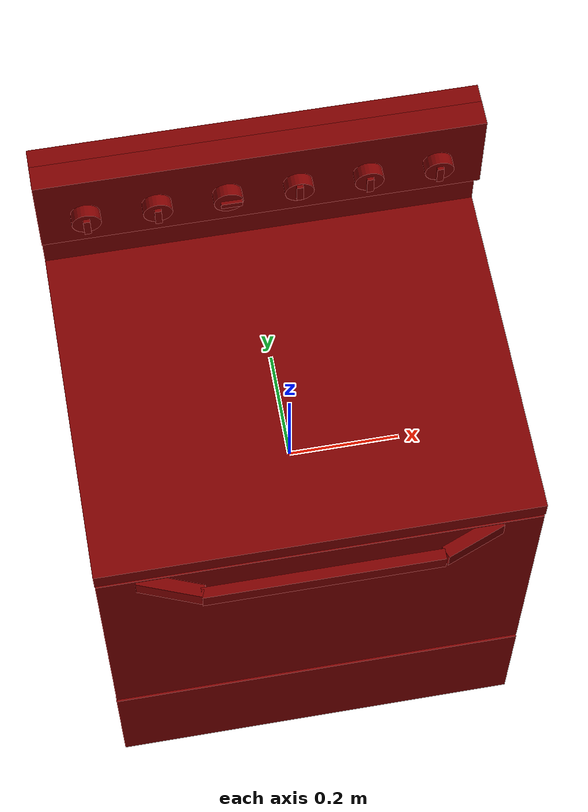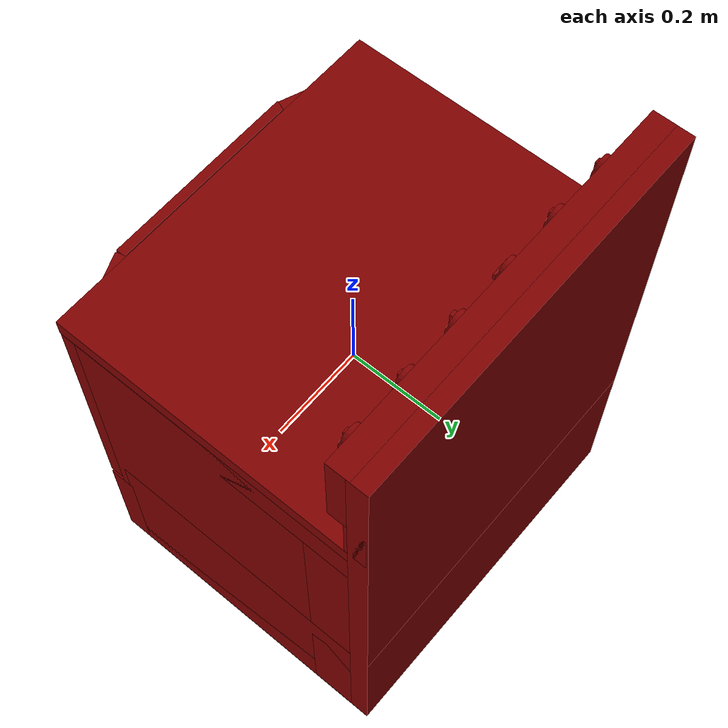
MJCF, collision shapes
<?xml version='1.0' encoding='UTF-8'?>
<mujoco model="model">
  <option timestep="0.002" gravity="0.0 0.0 -9.81"/>
  <compiler angle="radian"/>
  <asset>
    <mesh file="visuals/knob_front_left.obj" name="knob_front_left_vis"/>
    <mesh file="visuals/knob_front_right.obj" name="knob_front_right_vis"/>
    <mesh file="visuals/knob_rear_left.obj" name="knob_rear_left_vis"/>
    <mesh file="visuals/knob_rear_right.obj" name="knob_rear_right_vis"/>
    <mesh file="visuals/Body001.obj" name="Body001_vis"/>
    <mesh file="visuals/Door001.obj" name="Door001_vis"/>
    <mesh file="visuals/Door001_Clear.obj" name="Door001_Clear_vis"/>
    <mesh file="visuals/Knob001.obj" name="Knob001_vis"/>
    <mesh file="visuals/Knob002.obj" name="Knob002_vis"/>
    <mesh file="visuals/Shelf001.obj" name="Shelf001_vis"/>
    <texture file="visuals/T_BC001.png" name="Body001_material" type="2d"/>
    <material name="Body001_material" rgba="1 1 1 1.0" texture="Body001_material" shininess="0.1" specular="2"/>
    <texture file="visuals/T_BC001.png" name="knob_front_left_material" type="2d"/>
    <material name="knob_front_left_material" rgba="1 1 1 1.0" texture="knob_front_left_material" shininess="0.1" specular="1"/>
    <texture file="visuals/T_BC001.png" name="knob_front_right_material" type="2d"/>
    <material name="knob_front_right_material" rgba="1 1 1 1.0" texture="knob_front_right_material" shininess="0.1" specular="1"/>
    <texture file="visuals/T_BC001.png" name="knob_rear_left_material" type="2d"/>
    <material name="knob_rear_left_material" rgba="1 1 1 1.0" texture="knob_rear_left_material" shininess="0.1" specular="1"/>
    <texture file="visuals/T_BC001.png" name="knob_rear_right_material" type="2d"/>
    <material name="knob_rear_right_material" rgba="1 1 1 1.0" texture="knob_rear_right_material" shininess="0.1" specular="1"/>
    <texture file="visuals/T_BC001.png" name="Door001_material" type="2d"/>
    <material name="Door001_material" rgba="1 1 1 1.0" texture="Door001_material" shininess="0.1" specular="1"/>
    <texture file="visuals/T_BC001.png" name="Door001_Clear_material" type="2d"/>
    <material name="Door001_Clear_material" rgba="1 1 1 0.5" texture="Door001_Clear_material" shininess="0.1" specular="1"/>
    <texture file="visuals/T_BC001.png" name="Knob001_material" type="2d"/>
    <material name="Knob001_material" rgba="1 1 1 1.0" texture="Knob001_material" shininess="0.1" specular="1"/>
    <texture file="visuals/T_BC001.png" name="Knob002_material" type="2d"/>
    <material name="Knob002_material" rgba="1 1 1 1.0" texture="Knob002_material" shininess="0.1" specular="1"/>
    <texture file="visuals/T_BC001.png" name="Shelf001_material" type="2d"/>
    <material name="Shelf001_material" rgba="1 1 1 1.0" texture="Shelf001_material" shininess="0.1" specular="1"/>
  </asset>
  <default>
    <default class="visual">
      <geom conaffinity="0" contype="0" group="1" type="mesh"/>
    </default>
    <default class="collision">
      <geom group="0" rgba="0.5 0 0 0.5"/>
    </default>
    <default class="spawn">
      <geom group="0" rgba="1 1 1 0.5" contype="0" conaffinity="0"/>
      <site group="0" rgba="1 1 1 0.5"/>
    </default>
    <default class="region">
      <geom group="1" conaffinity="0" contype="0" rgba="0 1 0 0"/>
    </default>
  </default>
  <worldbody>
    <body>
      <body name="object">
        <geom mesh="Body001_vis" type="mesh" solimp="0.998 0.998 0.001" solref="0.001 1" friction="0.95 0.3 0.1" class="visual" material="Body001_material"/>
        <geom class="collision" type="box" pos="-0.000000 0.331412 0.000431" size="0.02057846449315548 0.3806861937046051 0.5647372007369995" quat="0.7071067094802856 0.0 0.0 -0.7071068286895752" density="1000.0"/>
        <geom class="collision" type="box" pos="-0.000000 0.010168 0.271455" size="0.31607431173324585 0.38068610429763794 0.017430583015084267" quat="0.7071067094802856 0.0 0.0 -0.7071068286895752" density="1000.0"/>
        <geom class="collision" type="box" pos="-0.343693 0.019709 -0.156034" size="0.29352590441703796 0.40877044200897217 0.03699295222759247" quat="0.4999999701976776 -0.5 0.5 -0.5" density="1000.0"/>
        <geom class="collision" type="box" pos="0.343720 0.019709 -0.156034" size="0.29352590441703796 0.40877044200897217 0.036966077983379364" quat="0.4999999701976776 -0.5 0.5 -0.5" density="1000.0"/>
        <geom class="collision" type="box" pos="0.000000 0.047332 -0.394877" size="0.30465906858444214 0.3806860148906708 0.17153748869895935" quat="1.376787679419067e-07 0.7071067094802856 -0.7071068286895752 -1.3767878215276141e-07" density="1000.0"/>
        <geom class="collision" type="box" pos="-0.000000 0.296498 0.478595" size="0.02219955250620842 0.38068607449531555 0.08681080490350723" quat="0.7071067094802856 0.0 0.0 -0.7071068286895752" density="1000.0"/>
        <geom class="collision" type="box" pos="-0.000000 -0.278329 -0.435118" size="0.027558904141187668 0.38068604469299316 0.13129696249961853" quat="1.376787679419067e-07 0.7071067094802856 -0.7071068286895752 -1.3767878215276141e-07" density="1000.0"/>
        <geom class="collision" type="box" pos="-0.000000 0.026974 0.216975" size="0.2992680072784424 0.38068610429763794 0.03758430853486061" quat="0.7071067094802856 0.0 0.0 -0.7071068286895752" density="1000.0"/>
        <geom class="collision" type="box" pos="-0.000000 0.270388 -0.144524" size="0.05286097154021263 0.38068610429763794 0.4197821319103241" quat="0.7071067094802856 0.0 0.0 -0.7071068286895752" density="1000.0"/>
        <geom class="collision" type="box" pos="0.000000 0.325919 0.340335" size="0.021302061155438423 0.3806861937046051 0.05144909396767616" quat="0.7071067094802856 0.0 0.0 -0.7071068286895752" density="1000.0"/>
        <geom class="collision" type="box" pos="-0.303404 -0.025624 -0.034953" size="0.23032960295677185 0.005830148234963417 0.008126558735966682" quat="0.4999999701976776 -0.5 0.5 -0.5" density="1000.0"/>
        <geom class="collision" type="box" pos="0.303437 -0.025624 -0.034953" size="0.23032960295677185 0.005830148234963417 0.008126558735966682" quat="0.4999999701976776 -0.5 0.5 -0.5" density="1000.0"/>
        <body name="knob_front_left">
          <joint axis="0.0 -1.0 0.0" pos="-0.299975 0.263978 0.481215" limited="true" name="knob_front_left_joint" range="0.0 3.490658503988659" type="hinge" damping="0.05" armature="0.001"/>
          <geom mesh="knob_front_left_vis" type="mesh" solimp="0.998 0.998 0.001" solref="0.001 1" friction="0.95 0.3 0.1" class="visual" material="knob_front_left_material"/>
          <geom class="collision" type="cylinder" pos="-0.300221 0.258123 0.481152" size="0.02481306903064251 0.010621534660458565" quat="0.7071067094802856 0.70710688829422 0.0 0.0" density="1000.0"/>
          <geom class="collision" type="box" pos="-0.300092 0.245372 0.477135" size="0.005765861831605434 0.003975188825279474 0.0180020984262228" quat="1.0 0.0 0.0 0.0" density="1000.0" name="knob_front_left_main"/>
        </body>
        <body name="knob_front_right">
          <joint axis="0.0 -1.0 0.0" pos="0.300025 0.263978 0.481215" limited="true" name="knob_front_right_joint" range="0.0 3.490658503988659" type="hinge" damping="0.05" armature="0.001"/>
          <geom mesh="knob_front_right_vis" type="mesh" solimp="0.998 0.998 0.001" solref="0.001 1" friction="0.95 0.3 0.1" class="visual" material="knob_front_right_material"/>
          <geom class="collision" type="cylinder" pos="0.299608 0.258123 0.481323" size="0.02481306903064251 0.010621534660458565" quat="0.7071067094802856 0.70710688829422 0.0 0.0" density="1000.0"/>
          <geom class="collision" type="box" pos="0.299872 0.245372 0.477353" size="0.005765861831605434 0.003975188825279474 0.0180020984262228" quat="1.0 -4.004205956609566e-15 5.960463056453591e-08 6.717942824252532e-08" density="1000.0" name="knob_front_right_main"/>
        </body>
        <body name="knob_rear_left">
          <joint axis="0.0 -1.0 0.0" pos="-0.179975 0.263978 0.481234" limited="true" name="knob_rear_left_joint" range="0.0 3.490658503988659" type="hinge" damping="0.05" armature="0.001"/>
          <geom mesh="knob_rear_left_vis" type="mesh" solimp="0.998 0.998 0.001" solref="0.001 1" friction="0.95 0.3 0.1" class="visual" material="knob_rear_left_material"/>
          <geom class="collision" type="cylinder" pos="-0.179792 0.258123 0.481152" size="0.02481306903064251 0.010621534660458565" quat="0.7071067094802856 0.70710688829422 0.0 0.0" density="1000.0"/>
          <geom class="collision" type="box" pos="-0.180235 0.245372 0.477135" size="0.005765861831605434 0.003975188825279474 0.0180020984262228" quat="1.0 0.0 0.0 0.0" density="1000.0" name="knob_rear_left_main"/>
        </body>
        <body name="knob_rear_right">
          <joint axis="0.0 -1.0 0.0" pos="0.180025 0.263978 0.481234" limited="true" name="knob_rear_right_joint" range="0.0 3.490658503988659" type="hinge" damping="0.05" armature="0.001"/>
          <geom mesh="knob_rear_right_vis" type="mesh" solimp="0.998 0.998 0.001" solref="0.001 1" friction="0.95 0.3 0.1" class="visual" material="knob_rear_right_material"/>
          <geom class="collision" type="cylinder" pos="0.179707 0.258123 0.481092" size="0.02481306903064251 0.010621534660458565" quat="0.7071067094802856 0.70710688829422 0.0 0.0" density="1000.0"/>
          <geom class="collision" type="box" pos="0.179955 0.245372 0.477353" size="0.005765861831605434 0.003975188825279474 0.0180020984262228" quat="1.0 -4.004205956609566e-15 5.960463056453591e-08 6.717942824252532e-08" density="1000.0" name="knob_rear_right_main"/>
        </body>
        <body name="Door001">
          <joint axis="1.0 0.0 0.0" pos="0.000025 -0.305913 -0.290604" limited="true" name="Door001_joint" range="0.0 1.5707963267948966" type="hinge" damping="1" frictionloss="1" armature=".01" stiffness="0.05"/>
          <geom mesh="Door001_vis" type="mesh" solimp="0.998 0.998 0.001" solref="0.001 1" friction="0.95 0.3 0.1" class="visual" material="Door001_material"/>
          <geom class="collision" type="box" pos="-0.000164 -0.290607 -0.022528" size="0.27016058564186096 0.37981483340263367 0.015298979356884956" quat="0.4999999701976776 0.5 0.5 -0.5" density="1000.0"/>
          <geom class="collision" type="box" pos="-0.256723 -0.319276 0.227606" size="0.057031355798244476 0.01119912974536419 0.016437169164419174" quat="1.9142196094890096e-07 0.9831273555755615 -0.18292252719402313 -3.5616331217624975e-08" density="1000.0"/>
          <geom class="collision" type="box" pos="0.255206 -0.319965 0.227606" size="0.0557350218296051 0.011199130676686764 0.016437169164419174" quat="0.9820809364318848 0.0 0.0 0.1884595900774002" density="1000.0"/>
          <geom class="collision" type="box" pos="-0.002193 -0.342845 0.227606" size="0.20576129853725433 0.00958611536771059 0.01643734984099865" quat="1.0 0.0 0.0 0.0" density="1000.0"/>
          <body name="Door001_Clear">
            <geom mesh="Door001_Clear_vis" type="mesh" solimp="0.998 0.998 0.001" solref="0.001 1" friction="0.95 0.3 0.1" class="visual" material="Door001_Clear_material"/>
            <geom class="collision" type="box" pos="-0.000113 -0.292006 -0.005667" size="0.3775268495082855 0.010744334198534489 0.14932073652744293" quat="1.0 0.0 0.0 0.0" density="1000.0"/>
          </body>
        </body>
        <body name="Knob001">
          <joint axis="0.0 1.0 0.0" pos="-0.059975 0.263978 0.481215" limited="true" name="Knob001_joint" range="0.0 5.323254218582705" type="hinge" damping="0.05" armature="0.001"/>
          <geom mesh="Knob001_vis" type="mesh" solimp="0.998 0.998 0.001" solref="0.001 1" friction="0.95 0.3 0.1" class="visual" material="Knob001_material"/>
          <geom class="collision" type="cylinder" pos="-0.060240 0.258123 0.481152" size="0.02481306903064251 0.010621534660458565" quat="0.7071067094802856 0.70710688829422 0.0 0.0" density="1000.0"/>
          <geom class="collision" type="box" pos="-0.056008 0.245372 0.481169" size="0.005765861831605434 0.003975188825279474 0.0180020984262228" quat="0.7071068286895752 -4.750302551315144e-08 -0.7071067094802856 -4.7503014855010406e-08" density="1000.0"/>
        </body>
        <body name="Knob002">
          <joint axis="0.0 1.0 0.0" pos="0.060025 0.263978 0.481215" limited="true" name="Knob002_joint" range="0.0 5.585053606381854" type="hinge" damping="0.05" armature="0.001"/>
          <geom mesh="Knob002_vis" type="mesh" solimp="0.998 0.998 0.001" solref="0.001 1" friction="0.95 0.3 0.1" class="visual" material="Knob002_material"/>
          <geom class="collision" type="cylinder" pos="0.060213 0.258123 0.481152" size="0.02481306903064251 0.010621534660458565" quat="0.7071067094802856 0.70710688829422 0.0 0.0" density="1000.0"/>
          <geom class="collision" type="box" pos="0.059864 0.244858 0.485778" size="0.005765861831605434 0.003975188825279474 0.0180020984262228" quat="1.0 -4.004205956609566e-15 5.960463056453591e-08 6.717942824252532e-08" density="1000.0"/>
        </body>
        <body name="Shelf001">
          <joint axis="0.0 -1.0 0.0" pos="-0.000310 -0.027782 -0.024401" limited="true" name="Shelf001_joint" range="0.0 0.4" type="slide" damping="1" frictionloss="1" armature=".01" stiffness="0.05"/>
          <geom mesh="Shelf001_vis" type="mesh" solimp="0.998 0.998 0.001" solref="0.001 1" friction="0.95 0.3 0.1" class="visual" material="Shelf001_material"/>
          <geom class="collision" type="box" pos="0.000049 -0.027744 -0.024506" size="0.22339029610157013 0.3058946430683136 0.003296835348010063" quat="0.7071067094802856 0.0 0.0 -0.7071068286895752" density="1000.0"/>
        </body>
        <geom class="region" name="reg_int" type="box" pos="0.00038599999999999746 -0.025157000000000013 -0.019074499999999994" size="0.312042 0.243899 0.2037245"/>
        <site type="cylinder" rgba="0.5 0 0 0.5" size="0.08162451535463333 0.0001" pos="0.185732 0.140491 0.287351" name="burner_on_rear_right"/>
        <site type="cylinder" rgba="0.5 0 0 0.5" size="0.10100214928388596 0.0001" pos="-0.152163 0.128252 0.287351" name="burner_on_rear_left"/>
        <site type="cylinder" rgba="0.5 0 0 0.5" size="0.12768973410129547 0.0001" pos="0.168894 -0.143276 0.287351" name="burner_on_front_right"/>
        <site type="cylinder" rgba="0.5 0 0 0.5" size="0.10568003356456757 0.0001" pos="-0.170639 -0.147668 0.287351" name="burner_on_front_left"/>
        <site name="burner_rear_right_place_site" type="cylinder" rgba="0.5 0 0 0" size="0.08162451535463333 4.999999873689376e-05" pos="0.185732 0.140491 0.287351"/>
        <site name="burner_rear_left_place_site" type="cylinder" rgba="0.5 0 0 0" size="0.10100214928388596 4.999999873689376e-05" pos="-0.152163 0.128252 0.287351"/>
        <site name="burner_front_right_place_site" type="cylinder" rgba="0.5 0 0 0" size="0.12768973410129547 4.999999873689376e-05" pos="0.168894 -0.143276 0.287351"/>
        <site name="burner_front_left_place_site" type="cylinder" rgba="0.5 0 0 0" size="0.10568003356456757 4.999999873689376e-05" pos="-0.170639 -0.147668 0.287351"/>
        <geom class="region" name="reg_main" type="box" pos="0.0 0.023042499999999994 -0.1387645" size="0.380686 0.3289485 0.4276505"/>
      </body>
    </body>
  </worldbody>
  <actuator>
    <motor name="knob_front_left_joint_actuator" joint="knob_front_left_joint" gear="10"/>
    <motor name="knob_front_right_joint_actuator" joint="knob_front_right_joint" gear="10"/>
    <motor name="knob_rear_left_joint_actuator" joint="knob_rear_left_joint" gear="10"/>
    <motor name="knob_rear_right_joint_actuator" joint="knob_rear_right_joint" gear="10"/>
    <motor name="Door001_joint_actuator" joint="Door001_joint" gear="50"/>
    <motor name="Knob001_joint_actuator" joint="Knob001_joint" gear="50"/>
    <motor name="Knob002_joint_actuator" joint="Knob002_joint" gear="50"/>
    <motor name="Shelf001_joint_actuator" joint="Shelf001_joint" gear="50"/>
  </actuator>
</mujoco>
